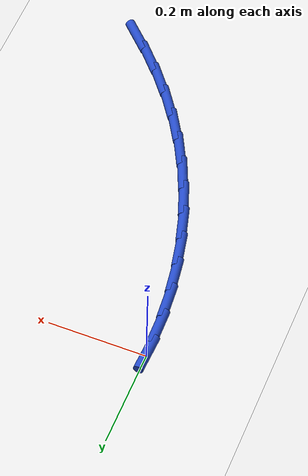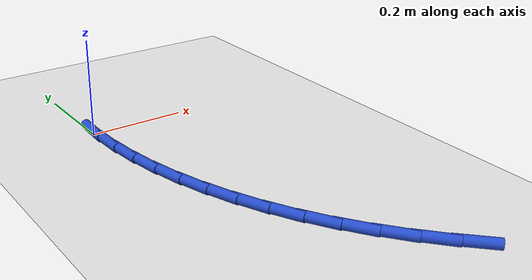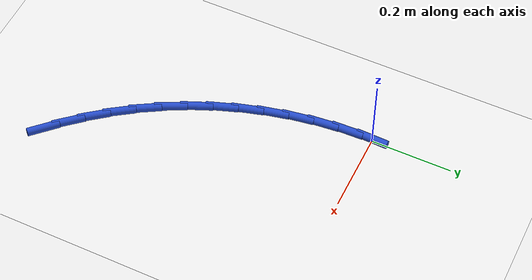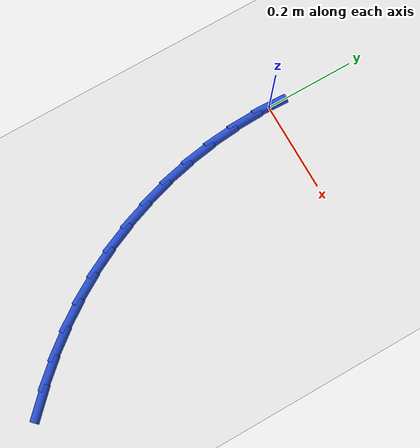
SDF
<sdf version="1.6">
 <world name="default">
  <model name="ground_plane">
   <static>1</static>
   <link name="link">
    <collision name="collision">
     <geometry><plane><normal>0 0 1</normal><size>100 100</size></plane></geometry>
     <surface><friction><ode><mu>100</mu><mu2>50</mu2></ode></friction></surface>
    </collision>
    <visual name="visual">
     <cast_shadows>0</cast_shadows>
     <geometry><plane><normal>0 0 1</normal><size>100 100</size></plane></geometry>
     <material>
      <script><uri>file://media/materials/scripts/gazebo.material</uri><name>Gazebo/WhiteGlow</name></script>
     </material>
    </visual>
   </link>
  </model>
  <model name="line">
   <link name="link_97">
    <pose>0.3093924182660107 -0.7197137750943016 0.01 0 1.57 -0.7874766282045942</pose>
    <collision name="collision">
     <geometry><cylinder><radius>0.01</radius><length>0.08</length></cylinder></geometry>
    </collision>
    <visual name="visual">
     <material>
      <script><name>Gazebo/Blue</name><uri>file://media/materials/scripts/gazebo.material</uri></script>
     </material>
     <geometry><cylinder><radius>0.01</radius><length>0.08</length></cylinder></geometry>
    </visual>
   </link>
   <link name="link_98">
    <pose>0.2653901282895148 -0.6755281894579807 0.01 0 1.57 -0.8469670114395085</pose>
    <collision name="collision">
     <geometry><cylinder><radius>0.01</radius><length>0.08</length></cylinder></geometry>
    </collision>
    <visual name="visual">
     <material>
      <script><name>Gazebo/Blue</name><uri>file://media/materials/scripts/gazebo.material</uri></script>
     </material>
     <geometry><cylinder><radius>0.01</radius><length>0.08</length></cylinder></geometry>
    </visual>
   </link>
   <link name="link_99">
    <pose>0.2240928506116234 -0.6288047174871538 0.01 0 1.57 -0.9085457935051937</pose>
    <collision name="collision">
     <geometry><cylinder><radius>0.01</radius><length>0.08</length></cylinder></geometry>
    </collision>
    <visual name="visual">
     <material>
      <script><name>Gazebo/Blue</name><uri>file://media/materials/scripts/gazebo.material</uri></script>
     </material>
     <geometry><cylinder><radius>0.01</radius><length>0.08</length></cylinder></geometry>
    </visual>
   </link>
   <link name="link_100">
    <pose>0.18580475277332814 -0.5796996179792269 0.01 0 1.57 -0.9726783413918675</pose>
    <collision name="collision">
     <geometry><cylinder><radius>0.01</radius><length>0.08</length></cylinder></geometry>
    </collision>
    <visual name="visual">
     <material>
      <script><name>Gazebo/Blue</name><uri>file://media/materials/scripts/gazebo.material</uri></script>
     </material>
     <geometry><cylinder><radius>0.01</radius><length>0.08</length></cylinder></geometry>
    </visual>
   </link>
   <link name="link_101">
    <pose>0.150829417497749 -0.5283692815011597 0.01 0 1.57 -1.0385037745273915</pose>
    <collision name="collision">
     <geometry><cylinder><radius>0.01</radius><length>0.08</length></cylinder></geometry>
    </collision>
    <visual name="visual">
     <material>
      <script><name>Gazebo/Blue</name><uri>file://media/materials/scripts/gazebo.material</uri></script>
     </material>
     <geometry><cylinder><radius>0.01</radius><length>0.08</length></cylinder></geometry>
    </visual>
   </link>
   <link name="link_102">
    <pose>0.11938817501150488 -0.4749886315257874 0.01 0 1.57 -1.1036362273851612</pose>
    <collision name="collision">
     <geometry><cylinder><radius>0.01</radius><length>0.08</length></cylinder></geometry>
    </collision>
    <visual name="visual">
     <material>
      <script><name>Gazebo/Blue</name><uri>file://media/materials/scripts/gazebo.material</uri></script>
     </material>
     <geometry><cylinder><radius>0.01</radius><length>0.08</length></cylinder></geometry>
    </visual>
   </link>
   <link name="link_103">
    <pose>0.09153602293563787 -0.4197700691303347 0.01 0 1.57 -1.1678634125490148</pose>
    <collision name="collision">
     <geometry><cylinder><radius>0.01</radius><length>0.08</length></cylinder></geometry>
    </collision>
    <visual name="visual">
     <material>
      <script><name>Gazebo/Blue</name><uri>file://media/materials/scripts/gazebo.material</uri></script>
     </material>
     <geometry><cylinder><radius>0.01</radius><length>0.08</length></cylinder></geometry>
    </visual>
   </link>
   <link name="link_104">
    <pose>0.06730789591425315 -0.3629305159267063 0.01 0 1.57 -1.2313114364489468</pose>
    <collision name="collision">
     <geometry><cylinder><radius>0.01</radius><length>0.08</length></cylinder></geometry>
    </collision>
    <visual name="visual">
     <material>
      <script><name>Gazebo/Blue</name><uri>file://media/materials/scripts/gazebo.material</uri></script>
     </material>
     <geometry><cylinder><radius>0.01</radius><length>0.08</length></cylinder></geometry>
    </visual>
   </link>
   <link name="link_105">
    <pose>0.04673872859145694 -0.30468689352680955 0.01 0 1.57 -1.2941300250450882</pose>
    <collision name="collision">
     <geometry><cylinder><radius>0.01</radius><length>0.08</length></cylinder></geometry>
    </collision>
    <visual name="visual">
     <material>
      <script><name>Gazebo/Blue</name><uri>file://media/materials/scripts/gazebo.material</uri></script>
     </material>
     <geometry><cylinder><radius>0.01</radius><length>0.08</length></cylinder></geometry>
    </visual>
   </link>
   <link name="link_106">
    <pose>0.0298634556113545 -0.24525612354254914 0.01 0 1.57 -1.356485991507737</pose>
    <collision name="collision">
     <geometry><cylinder><radius>0.01</radius><length>0.08</length></cylinder></geometry>
    </collision>
    <visual name="visual">
     <material>
      <script><name>Gazebo/Blue</name><uri>file://media/materials/scripts/gazebo.material</uri></script>
     </material>
     <geometry><cylinder><radius>0.01</radius><length>0.08</length></cylinder></geometry>
    </visual>
   </link>
   <link name="link_107">
    <pose>0.016717011618051995 -0.18485512758583247 0.01 0 1.57 -1.4185571331869804</pose>
    <collision name="collision">
     <geometry><cylinder><radius>0.01</radius><length>0.08</length></cylinder></geometry>
    </collision>
    <visual name="visual">
     <material>
      <script><name>Gazebo/Blue</name><uri>file://media/materials/scripts/gazebo.material</uri></script>
     </material>
     <geometry><cylinder><radius>0.01</radius><length>0.08</length></cylinder></geometry>
    </visual>
   </link>
   <link name="link_108">
    <pose>0.007334331255654832 -0.12370082726856418 0.01 0 1.57 -1.4805265116624053</pose>
    <collision name="collision">
     <geometry><cylinder><radius>0.01</radius><length>0.08</length></cylinder></geometry>
    </collision>
    <visual name="visual">
     <material>
      <script><name>Gazebo/Blue</name><uri>file://media/materials/scripts/gazebo.material</uri></script>
     </material>
     <geometry><cylinder><radius>0.01</radius><length>0.08</length></cylinder></geometry>
    </visual>
   </link>
   <link name="link_109">
    <pose>0.0017503491682690098 -0.06201014420265179 0.01 0 1.57 -1.5425769999839811</pose>
    <collision name="collision">
     <geometry><cylinder><radius>0.01</radius><length>0.08</length></cylinder></geometry>
    </collision>
    <visual name="visual">
     <material>
      <script><name>Gazebo/Blue</name><uri>file://media/materials/scripts/gazebo.material</uri></script>
     </material>
     <geometry><cylinder><radius>0.01</radius><length>0.08</length></cylinder></geometry>
    </visual>
   </link>
   <link name="link_110">
    <pose>1.0408340855860843e-16 1.249000902703301e-16 0.01 0 1.57 1.536706706518501</pose>
    <collision name="collision">
     <geometry><cylinder><radius>0.01</radius><length>0.08</length></cylinder></geometry>
    </collision>
    <visual name="visual">
     <material>
      <script><name>Gazebo/Blue</name><uri>file://media/materials/scripts/gazebo.material</uri></script>
     </material>
     <geometry><cylinder><radius>0.01</radius><length>0.08</length></cylinder></geometry>
    </visual>
   </link>
  </model>
 </world>
</sdf>
